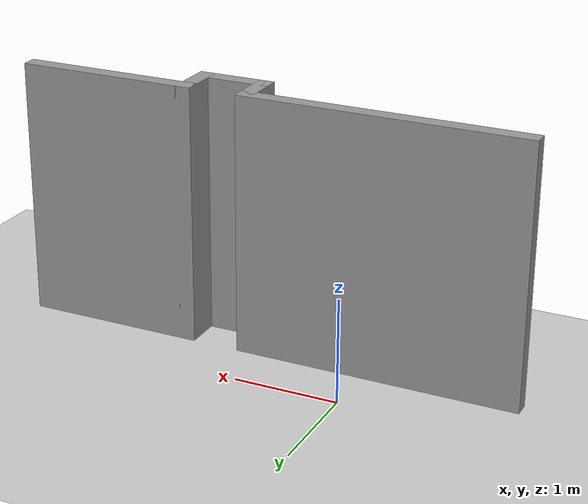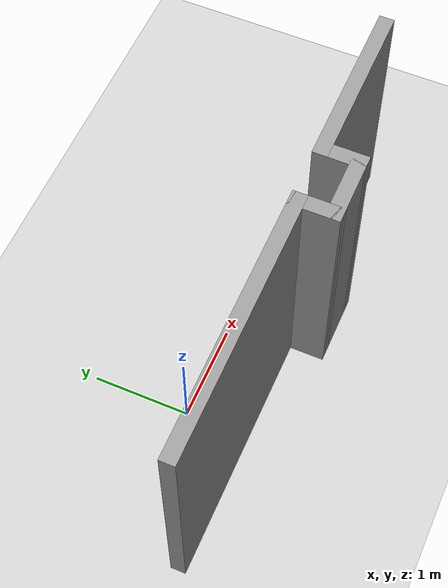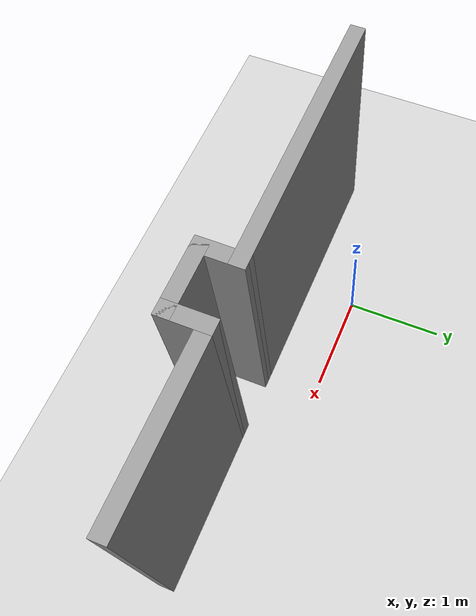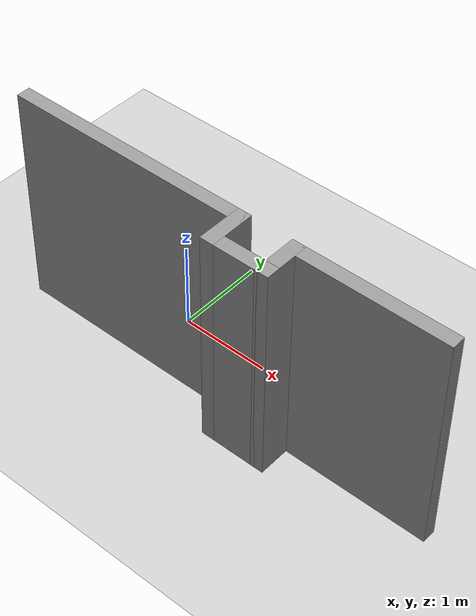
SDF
<sdf version="1.7">
 <world name="default">
  <scene><ambient>0.4 0.4 0.4 1</ambient><background>0.7 0.7 0.7 1</background><shadows>1</shadows></scene>
  <light name="sun" type="directional">
   <pose>0 0 10 0 -0 0</pose>
   <diffuse>0.8 0.8 0.8 1</diffuse>
   <specular>0.2 0.2 0.2 1</specular>
   <attenuation>
    <range>1000</range>
    <constant>0.9</constant>
    <linear>0.01</linear>
    <quadratic>0.001</quadratic>
   </attenuation>
   <direction>-0.5 0.1 -0.9</direction>
   <spot><inner_angle>0</inner_angle><outer_angle>0</outer_angle><falloff>0</falloff></spot>
  </light>
  <model name="ground_plane">
   <static>1</static>
   <link name="link">
    <collision name="collision">
     <geometry><plane><normal>0 0 1</normal><size>100 100</size></plane></geometry>
     <surface>
      <contact><collide_bitmask>65535</collide_bitmask></contact>
      <friction><ode><mu>100</mu><mu2>50</mu2></ode></friction>
     </surface>
    </collision>
    <visual name="visual">
     <cast_shadows>0</cast_shadows>
     <geometry><plane><normal>0 0 1</normal><size>100 100</size></plane></geometry>
     <material>
      <script><uri>file://media/materials/scripts/gazebo.material</uri><name>Gazebo/Grey</name></script>
     </material>
    </visual>
   </link>
  </model>
  <physics type="ode">
   <real_time_update_rate>1000</real_time_update_rate>
   <max_step_size>0.001</max_step_size>
   <real_time_factor>1</real_time_factor>
   <ode>
    <solver>
     <type>quick</type>
     <iters>150</iters>
     <precon_iters>0</precon_iters>
     <sor>1.4</sor>
     <use_dynamic_moi_rescaling>1</use_dynamic_moi_rescaling>
    </solver>
    <constraints>
     <cfm>1e-05</cfm>
     <erp>0.2</erp>
     <contact_max_correcting_vel>2000</contact_max_correcting_vel>
     <contact_surface_layer>0.01</contact_surface_layer>
    </constraints>
   </ode>
  </physics>
  <gravity>0 0 -9.8</gravity>
  <magnetic_field>6e-06 2.3e-05 -4.2e-05</magnetic_field>
  <atmosphere type="adiabatic"/>
  <spherical_coordinates>
   <surface_model>EARTH_WGS84</surface_model>
   <latitude_deg>0</latitude_deg>
   <longitude_deg>0</longitude_deg>
   <elevation>0</elevation>
   <heading_deg>0</heading_deg>
  </spherical_coordinates>
  <model name="wall_park">
   <pose>0.979657 -0.2339 0 0 -0 0</pose>
   <link name="Wall_13">
    <collision name="Wall_13_Collision">
     <geometry><box><size>2.75 0.15 2.5</size></box></geometry>
     <pose>0 0 1.25 0 -0 0</pose>
    </collision>
    <visual name="Wall_13_Visual">
     <pose>0 0 1.25 0 -0 0</pose>
     <geometry><box><size>2.75 0.15 2.5</size></box></geometry>
     <material>
      <script><uri>file://media/materials/scripts/gazebo.material</uri><name>Gazebo/Grey</name></script>
      <ambient>1 1 1 1</ambient>
     </material>
     <meta><layer>0</layer></meta>
    </visual>
    <pose>-1.1 -0.3575 0 0 -0 0</pose>
   </link>
   <link name="Wall_14">
    <collision name="Wall_14_Collision">
     <geometry><box><size>0.5 0.15 2.5</size></box></geometry>
     <pose>0 0 1.25 0 -0 0</pose>
    </collision>
    <visual name="Wall_14_Visual">
     <pose>0 0 1.25 0 -0 0</pose>
     <geometry><box><size>0.5 0.15 2.5</size></box></geometry>
     <material>
      <script><uri>file://media/materials/scripts/gazebo.material</uri><name>Gazebo/Grey</name></script>
      <ambient>1 1 1 1</ambient>
     </material>
     <meta><layer>0</layer></meta>
    </visual>
    <pose>0.2 -0.5325 0 0 -0 -1.5708</pose>
   </link>
   <link name="Wall_15">
    <collision name="Wall_15_Collision">
     <geometry><box><size>0.75 0.15 2.5</size></box></geometry>
     <pose>0 0 1.25 0 -0 0</pose>
    </collision>
    <visual name="Wall_15_Visual">
     <pose>0 0 1.25 0 -0 0</pose>
     <geometry><box><size>0.75 0.15 2.5</size></box></geometry>
     <material>
      <script><uri>file://media/materials/scripts/gazebo.material</uri><name>Gazebo/Grey</name></script>
      <ambient>1 1 1 1</ambient>
     </material>
     <meta><layer>0</layer></meta>
    </visual>
    <pose>0.5 -0.7075 0 0 -0 0</pose>
   </link>
   <link name="Wall_16">
    <collision name="Wall_16_Collision">
     <geometry><box><size>0.5 0.15 2.5</size></box></geometry>
     <pose>0 0 1.25 0 -0 0</pose>
    </collision>
    <visual name="Wall_16_Visual">
     <pose>0 0 1.25 0 -0 0</pose>
     <geometry><box><size>0.5 0.15 2.5</size></box></geometry>
     <material>
      <script><uri>file://media/materials/scripts/gazebo.material</uri><name>Gazebo/Grey</name></script>
      <ambient>1 1 1 1</ambient>
     </material>
     <meta><layer>0</layer></meta>
    </visual>
    <pose>0.8 -0.5325 0 0 -0 1.5708</pose>
   </link>
   <link name="Wall_17">
    <collision name="Wall_17_Collision">
     <geometry><box><size>1.75 0.15 2.5</size></box></geometry>
     <pose>0 0 1.25 0 -0 0</pose>
    </collision>
    <visual name="Wall_17_Visual">
     <pose>0 0 1.25 0 -0 0</pose>
     <geometry><box><size>1.75 0.15 2.5</size></box></geometry>
     <material>
      <script><uri>file://media/materials/scripts/gazebo.material</uri><name>Gazebo/Grey</name></script>
      <ambient>1 1 1 1</ambient>
     </material>
     <meta><layer>0</layer></meta>
    </visual>
    <pose>1.6 -0.3575 0 0 -0 0</pose>
   </link>
   <static>1</static>
  </model>
 </world>
</sdf>
